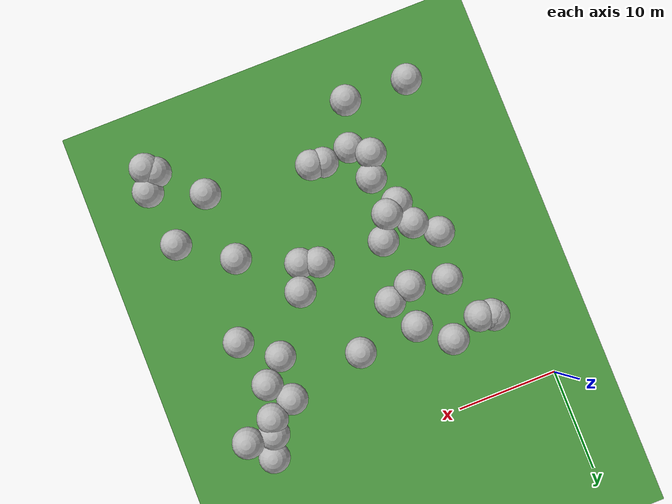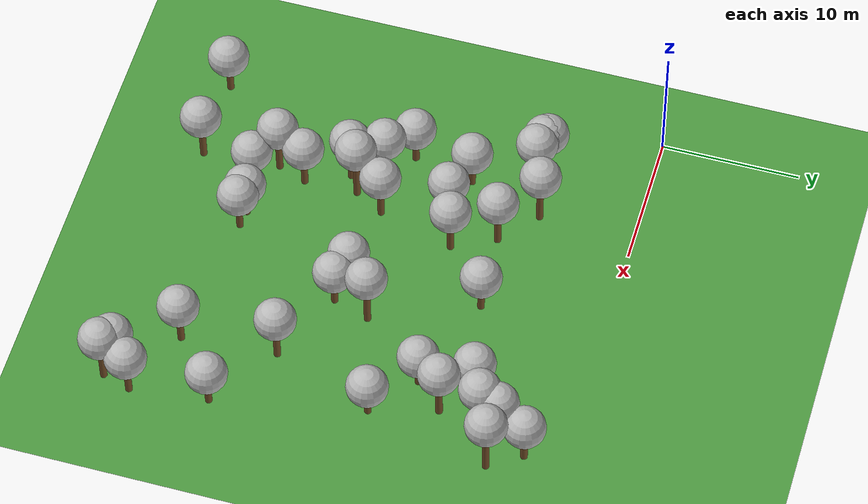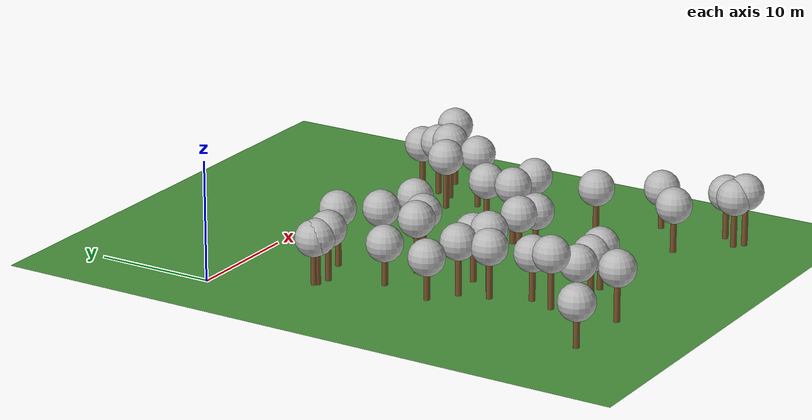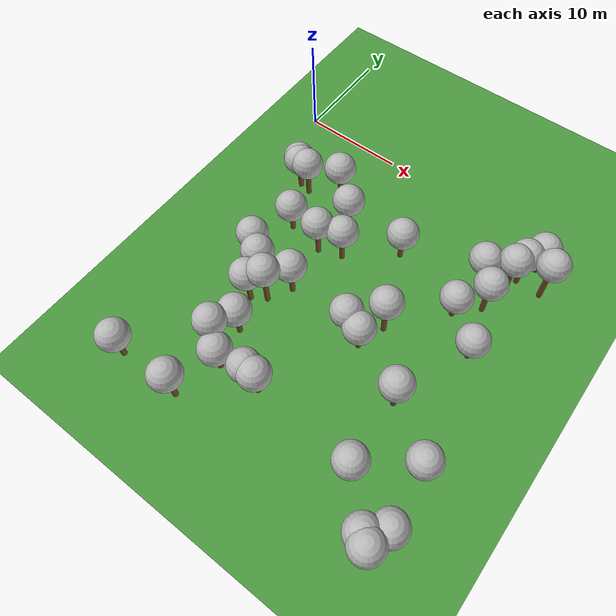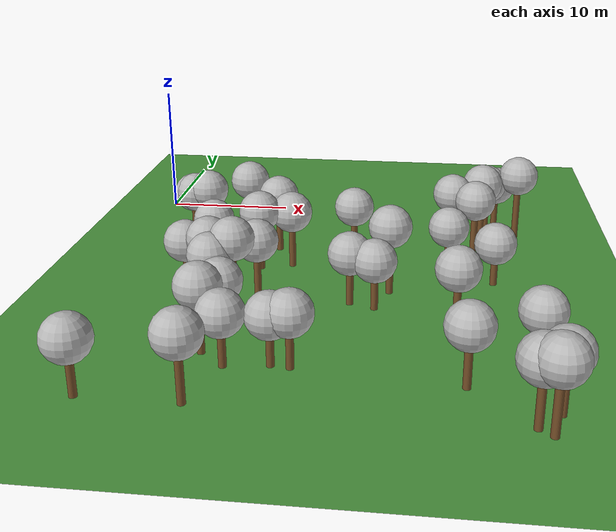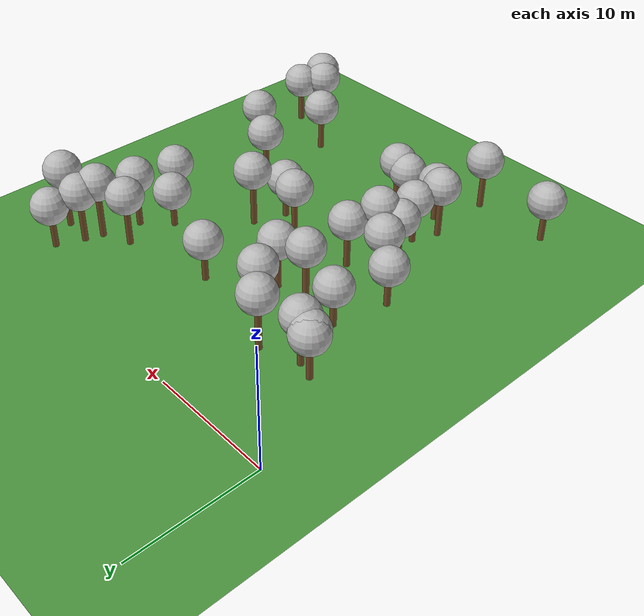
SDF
<sdf version="1.5">
 <world name="default">
  <model name="tree_simple496">
   <static>1</static>
   <link name="link">
    <pose>0 0 0.1 0 -0 0</pose>
    <collision name="collision_trunk">
     <pose>0 0 2 0 -0 0</pose>
     <geometry><cylinder><radius>0.25</radius><length>4</length></cylinder></geometry>
    </collision>
    <collision name="collision_treetop">
     <pose>0 0 5.2 0 -0 0</pose>
     <geometry><sphere><radius>1.5</radius></sphere></geometry>
    </collision>
    <visual name="trunk">
     <pose>0 0 2 0 -0 0</pose>
     <geometry><cylinder><radius>0.25</radius><length>4</length></cylinder></geometry>
     <material>
      <script>
       <uri>model://tree_simple/scripts</uri>
       <uri>model://tree_simple/materials/textures</uri>
       <name>TreeSimple/Trunk</name>
      </script>
     </material>
    </visual>
    <visual name="treetop">
     <pose>0 0 5.2 0 -0 0</pose>
     <geometry><sphere><radius>1.5</radius></sphere></geometry>
     <material>
      <script>
       <uri>model://tree_simple/scripts</uri>
       <uri>model://tree_simple/materials/textures</uri>
       <name>TreeSimple/Treetop</name>
      </script>
     </material>
    </visual>
   </link>
   <pose>13.6194298432 -26.9856291803 -1.9925861293488478 0 -0 0</pose>
  </model>
  <model name="tree_simple478">
   <static>1</static>
   <link name="link">
    <pose>0 0 0.1 0 -0 0</pose>
    <collision name="collision_trunk">
     <pose>0 0 2 0 -0 0</pose>
     <geometry><cylinder><radius>0.25</radius><length>4</length></cylinder></geometry>
    </collision>
    <collision name="collision_treetop">
     <pose>0 0 5.2 0 -0 0</pose>
     <geometry><sphere><radius>1.5</radius></sphere></geometry>
    </collision>
    <visual name="trunk">
     <pose>0 0 2 0 -0 0</pose>
     <geometry><cylinder><radius>0.25</radius><length>4</length></cylinder></geometry>
     <material>
      <script>
       <uri>model://tree_simple/scripts</uri>
       <uri>model://tree_simple/materials/textures</uri>
       <name>TreeSimple/Trunk</name>
      </script>
     </material>
    </visual>
    <visual name="treetop">
     <pose>0 0 5.2 0 -0 0</pose>
     <geometry><sphere><radius>1.5</radius></sphere></geometry>
     <material>
      <script>
       <uri>model://tree_simple/scripts</uri>
       <uri>model://tree_simple/materials/textures</uri>
       <name>TreeSimple/Treetop</name>
      </script>
     </material>
    </visual>
   </link>
   <pose>6.74093075138 -12.3162984353 -1.8605144772350228 0 -0 0</pose>
  </model>
  <model name="tree_simple472">
   <static>1</static>
   <link name="link">
    <pose>0 0 0.1 0 -0 0</pose>
    <collision name="collision_trunk">
     <pose>0 0 2 0 -0 0</pose>
     <geometry><cylinder><radius>0.25</radius><length>4</length></cylinder></geometry>
    </collision>
    <collision name="collision_treetop">
     <pose>0 0 5.2 0 -0 0</pose>
     <geometry><sphere><radius>1.5</radius></sphere></geometry>
    </collision>
    <visual name="trunk">
     <pose>0 0 2 0 -0 0</pose>
     <geometry><cylinder><radius>0.25</radius><length>4</length></cylinder></geometry>
     <material>
      <script>
       <uri>model://tree_simple/scripts</uri>
       <uri>model://tree_simple/materials/textures</uri>
       <name>TreeSimple/Trunk</name>
      </script>
     </material>
    </visual>
    <visual name="treetop">
     <pose>0 0 5.2 0 -0 0</pose>
     <geometry><sphere><radius>1.5</radius></sphere></geometry>
     <material>
      <script>
       <uri>model://tree_simple/scripts</uri>
       <uri>model://tree_simple/materials/textures</uri>
       <name>TreeSimple/Treetop</name>
      </script>
     </material>
    </visual>
   </link>
   <pose>9.92228677952 -23.8303447852 -1.431262749278447 0 -0 0</pose>
  </model>
  <model name="tree_simple469">
   <static>1</static>
   <link name="link">
    <pose>0 0 0.1 0 -0 0</pose>
    <collision name="collision_trunk">
     <pose>0 0 2 0 -0 0</pose>
     <geometry><cylinder><radius>0.25</radius><length>4</length></cylinder></geometry>
    </collision>
    <collision name="collision_treetop">
     <pose>0 0 5.2 0 -0 0</pose>
     <geometry><sphere><radius>1.5</radius></sphere></geometry>
    </collision>
    <visual name="trunk">
     <pose>0 0 2 0 -0 0</pose>
     <geometry><cylinder><radius>0.25</radius><length>4</length></cylinder></geometry>
     <material>
      <script>
       <uri>model://tree_simple/scripts</uri>
       <uri>model://tree_simple/materials/textures</uri>
       <name>TreeSimple/Trunk</name>
      </script>
     </material>
    </visual>
    <visual name="treetop">
     <pose>0 0 5.2 0 -0 0</pose>
     <geometry><sphere><radius>1.5</radius></sphere></geometry>
     <material>
      <script>
       <uri>model://tree_simple/scripts</uri>
       <uri>model://tree_simple/materials/textures</uri>
       <name>TreeSimple/Treetop</name>
      </script>
     </material>
    </visual>
   </link>
   <pose>28.6908934165 -31.7515844244 -1.147731988438275 0 -0 0</pose>
  </model>
  <model name="tree_simple463">
   <static>1</static>
   <link name="link">
    <pose>0 0 0.1 0 -0 0</pose>
    <collision name="collision_trunk">
     <pose>0 0 2 0 -0 0</pose>
     <geometry><cylinder><radius>0.25</radius><length>4</length></cylinder></geometry>
    </collision>
    <collision name="collision_treetop">
     <pose>0 0 5.2 0 -0 0</pose>
     <geometry><sphere><radius>1.5</radius></sphere></geometry>
    </collision>
    <visual name="trunk">
     <pose>0 0 2 0 -0 0</pose>
     <geometry><cylinder><radius>0.25</radius><length>4</length></cylinder></geometry>
     <material>
      <script>
       <uri>model://tree_simple/scripts</uri>
       <uri>model://tree_simple/materials/textures</uri>
       <name>TreeSimple/Trunk</name>
      </script>
     </material>
    </visual>
    <visual name="treetop">
     <pose>0 0 5.2 0 -0 0</pose>
     <geometry><sphere><radius>1.5</radius></sphere></geometry>
     <material>
      <script>
       <uri>model://tree_simple/scripts</uri>
       <uri>model://tree_simple/materials/textures</uri>
       <name>TreeSimple/Treetop</name>
      </script>
     </material>
    </visual>
   </link>
   <pose>4.14452898467 -7.71733475474 -1.383862086193779 0 -0 0</pose>
  </model>
  <model name="tree_simple451">
   <static>1</static>
   <link name="link">
    <pose>0 0 0.1 0 -0 0</pose>
    <collision name="collision_trunk">
     <pose>0 0 2 0 -0 0</pose>
     <geometry><cylinder><radius>0.25</radius><length>4</length></cylinder></geometry>
    </collision>
    <collision name="collision_treetop">
     <pose>0 0 5.2 0 -0 0</pose>
     <geometry><sphere><radius>1.5</radius></sphere></geometry>
    </collision>
    <visual name="trunk">
     <pose>0 0 2 0 -0 0</pose>
     <geometry><cylinder><radius>0.25</radius><length>4</length></cylinder></geometry>
     <material>
      <script>
       <uri>model://tree_simple/scripts</uri>
       <uri>model://tree_simple/materials/textures</uri>
       <name>TreeSimple/Trunk</name>
      </script>
     </material>
    </visual>
    <visual name="treetop">
     <pose>0 0 5.2 0 -0 0</pose>
     <geometry><sphere><radius>1.5</radius></sphere></geometry>
     <material>
      <script>
       <uri>model://tree_simple/scripts</uri>
       <uri>model://tree_simple/materials/textures</uri>
       <name>TreeSimple/Treetop</name>
      </script>
     </material>
    </visual>
   </link>
   <pose>25.0880879186 -28.1508348671 -1.3702262404169263 0 -0 0</pose>
  </model>
  <model name="tree_simple439">
   <static>1</static>
   <link name="link">
    <pose>0 0 0.1 0 -0 0</pose>
    <collision name="collision_trunk">
     <pose>0 0 2 0 -0 0</pose>
     <geometry><cylinder><radius>0.25</radius><length>4</length></cylinder></geometry>
    </collision>
    <collision name="collision_treetop">
     <pose>0 0 5.2 0 -0 0</pose>
     <geometry><sphere><radius>1.5</radius></sphere></geometry>
    </collision>
    <visual name="trunk">
     <pose>0 0 2 0 -0 0</pose>
     <geometry><cylinder><radius>0.25</radius><length>4</length></cylinder></geometry>
     <material>
      <script>
       <uri>model://tree_simple/scripts</uri>
       <uri>model://tree_simple/materials/textures</uri>
       <name>TreeSimple/Trunk</name>
      </script>
     </material>
    </visual>
    <visual name="treetop">
     <pose>0 0 5.2 0 -0 0</pose>
     <geometry><sphere><radius>1.5</radius></sphere></geometry>
     <material>
      <script>
       <uri>model://tree_simple/scripts</uri>
       <uri>model://tree_simple/materials/textures</uri>
       <name>TreeSimple/Treetop</name>
      </script>
     </material>
    </visual>
   </link>
   <pose>8.56501316053 -20.7640585998 -1.0570590841891165 0 -0 0</pose>
  </model>
  <model name="tree_simple432">
   <static>1</static>
   <link name="link">
    <pose>0 0 0.1 0 -0 0</pose>
    <collision name="collision_trunk">
     <pose>0 0 2 0 -0 0</pose>
     <geometry><cylinder><radius>0.25</radius><length>4</length></cylinder></geometry>
    </collision>
    <collision name="collision_treetop">
     <pose>0 0 5.2 0 -0 0</pose>
     <geometry><sphere><radius>1.5</radius></sphere></geometry>
    </collision>
    <visual name="trunk">
     <pose>0 0 2 0 -0 0</pose>
     <geometry><cylinder><radius>0.25</radius><length>4</length></cylinder></geometry>
     <material>
      <script>
       <uri>model://tree_simple/scripts</uri>
       <uri>model://tree_simple/materials/textures</uri>
       <name>TreeSimple/Trunk</name>
      </script>
     </material>
    </visual>
    <visual name="treetop">
     <pose>0 0 5.2 0 -0 0</pose>
     <geometry><sphere><radius>1.5</radius></sphere></geometry>
     <material>
      <script>
       <uri>model://tree_simple/scripts</uri>
       <uri>model://tree_simple/materials/textures</uri>
       <name>TreeSimple/Treetop</name>
      </script>
     </material>
    </visual>
   </link>
   <pose>8.39657738542 -6.88848549894 -0.5176619723116522 0 -0 0</pose>
  </model>
  <model name="tree_simple429">
   <static>1</static>
   <link name="link">
    <pose>0 0 0.1 0 -0 0</pose>
    <collision name="collision_trunk">
     <pose>0 0 2 0 -0 0</pose>
     <geometry><cylinder><radius>0.25</radius><length>4</length></cylinder></geometry>
    </collision>
    <collision name="collision_treetop">
     <pose>0 0 5.2 0 -0 0</pose>
     <geometry><sphere><radius>1.5</radius></sphere></geometry>
    </collision>
    <visual name="trunk">
     <pose>0 0 2 0 -0 0</pose>
     <geometry><cylinder><radius>0.25</radius><length>4</length></cylinder></geometry>
     <material>
      <script>
       <uri>model://tree_simple/scripts</uri>
       <uri>model://tree_simple/materials/textures</uri>
       <name>TreeSimple/Trunk</name>
      </script>
     </material>
    </visual>
    <visual name="treetop">
     <pose>0 0 5.2 0 -0 0</pose>
     <geometry><sphere><radius>1.5</radius></sphere></geometry>
     <material>
      <script>
       <uri>model://tree_simple/scripts</uri>
       <uri>model://tree_simple/materials/textures</uri>
       <name>TreeSimple/Treetop</name>
      </script>
     </material>
    </visual>
   </link>
   <pose>29.4727075469 -24.7358283571 -1.8949977459189733 0 -0 0</pose>
  </model>
  <model name="tree_simple428">
   <static>1</static>
   <link name="link">
    <pose>0 0 0.1 0 -0 0</pose>
    <collision name="collision_trunk">
     <pose>0 0 2 0 -0 0</pose>
     <geometry><cylinder><radius>0.25</radius><length>4</length></cylinder></geometry>
    </collision>
    <collision name="collision_treetop">
     <pose>0 0 5.2 0 -0 0</pose>
     <geometry><sphere><radius>1.5</radius></sphere></geometry>
    </collision>
    <visual name="trunk">
     <pose>0 0 2 0 -0 0</pose>
     <geometry><cylinder><radius>0.25</radius><length>4</length></cylinder></geometry>
     <material>
      <script>
       <uri>model://tree_simple/scripts</uri>
       <uri>model://tree_simple/materials/textures</uri>
       <name>TreeSimple/Trunk</name>
      </script>
     </material>
    </visual>
    <visual name="treetop">
     <pose>0 0 5.2 0 -0 0</pose>
     <geometry><sphere><radius>1.5</radius></sphere></geometry>
     <material>
      <script>
       <uri>model://tree_simple/scripts</uri>
       <uri>model://tree_simple/materials/textures</uri>
       <name>TreeSimple/Treetop</name>
      </script>
     </material>
    </visual>
   </link>
   <pose>9.87663766252 -19.9509422297 -0.22740933367404081 0 -0 0</pose>
  </model>
  <model name="tree_simple394">
   <static>1</static>
   <link name="link">
    <pose>0 0 0.1 0 -0 0</pose>
    <collision name="collision_trunk">
     <pose>0 0 2 0 -0 0</pose>
     <geometry><cylinder><radius>0.25</radius><length>4</length></cylinder></geometry>
    </collision>
    <collision name="collision_treetop">
     <pose>0 0 5.2 0 -0 0</pose>
     <geometry><sphere><radius>1.5</radius></sphere></geometry>
    </collision>
    <visual name="trunk">
     <pose>0 0 2 0 -0 0</pose>
     <geometry><cylinder><radius>0.25</radius><length>4</length></cylinder></geometry>
     <material>
      <script>
       <uri>model://tree_simple/scripts</uri>
       <uri>model://tree_simple/materials/textures</uri>
       <name>TreeSimple/Trunk</name>
      </script>
     </material>
    </visual>
    <visual name="treetop">
     <pose>0 0 5.2 0 -0 0</pose>
     <geometry><sphere><radius>1.5</radius></sphere></geometry>
     <material>
      <script>
       <uri>model://tree_simple/scripts</uri>
       <uri>model://tree_simple/materials/textures</uri>
       <name>TreeSimple/Treetop</name>
      </script>
     </material>
    </visual>
   </link>
   <pose>26.6658652991 -6.19294115589 -0.3745748475699274 0 -0 0</pose>
  </model>
  <model name="tree_simple389">
   <static>1</static>
   <link name="link">
    <pose>0 0 0.1 0 -0 0</pose>
    <collision name="collision_trunk">
     <pose>0 0 2 0 -0 0</pose>
     <geometry><cylinder><radius>0.25</radius><length>4</length></cylinder></geometry>
    </collision>
    <collision name="collision_treetop">
     <pose>0 0 5.2 0 -0 0</pose>
     <geometry><sphere><radius>1.5</radius></sphere></geometry>
    </collision>
    <visual name="trunk">
     <pose>0 0 2 0 -0 0</pose>
     <geometry><cylinder><radius>0.25</radius><length>4</length></cylinder></geometry>
     <material>
      <script>
       <uri>model://tree_simple/scripts</uri>
       <uri>model://tree_simple/materials/textures</uri>
       <name>TreeSimple/Trunk</name>
      </script>
     </material>
    </visual>
    <visual name="treetop">
     <pose>0 0 5.2 0 -0 0</pose>
     <geometry><sphere><radius>1.5</radius></sphere></geometry>
     <material>
      <script>
       <uri>model://tree_simple/scripts</uri>
       <uri>model://tree_simple/materials/textures</uri>
       <name>TreeSimple/Treetop</name>
      </script>
     </material>
    </visual>
   </link>
   <pose>12.5934036343 -12.2598342596 -1.0758427439989324 0 -0 0</pose>
  </model>
  <model name="tree_simple377">
   <static>1</static>
   <link name="link">
    <pose>0 0 0.1 0 -0 0</pose>
    <collision name="collision_trunk">
     <pose>0 0 2 0 -0 0</pose>
     <geometry><cylinder><radius>0.25</radius><length>4</length></cylinder></geometry>
    </collision>
    <collision name="collision_treetop">
     <pose>0 0 5.2 0 -0 0</pose>
     <geometry><sphere><radius>1.5</radius></sphere></geometry>
    </collision>
    <visual name="trunk">
     <pose>0 0 2 0 -0 0</pose>
     <geometry><cylinder><radius>0.25</radius><length>4</length></cylinder></geometry>
     <material>
      <script>
       <uri>model://tree_simple/scripts</uri>
       <uri>model://tree_simple/materials/textures</uri>
       <name>TreeSimple/Trunk</name>
      </script>
     </material>
    </visual>
    <visual name="treetop">
     <pose>0 0 5.2 0 -0 0</pose>
     <geometry><sphere><radius>1.5</radius></sphere></geometry>
     <material>
      <script>
       <uri>model://tree_simple/scripts</uri>
       <uri>model://tree_simple/materials/textures</uri>
       <name>TreeSimple/Treetop</name>
      </script>
     </material>
    </visual>
   </link>
   <pose>10.8205708978 -27.3699142702 -1.8265645475693046 0 -0 0</pose>
  </model>
  <model name="tree_simple327">
   <static>1</static>
   <link name="link">
    <pose>0 0 0.1 0 -0 0</pose>
    <collision name="collision_trunk">
     <pose>0 0 2 0 -0 0</pose>
     <geometry><cylinder><radius>0.25</radius><length>4</length></cylinder></geometry>
    </collision>
    <collision name="collision_treetop">
     <pose>0 0 5.2 0 -0 0</pose>
     <geometry><sphere><radius>1.5</radius></sphere></geometry>
    </collision>
    <visual name="trunk">
     <pose>0 0 2 0 -0 0</pose>
     <geometry><cylinder><radius>0.25</radius><length>4</length></cylinder></geometry>
     <material>
      <script>
       <uri>model://tree_simple/scripts</uri>
       <uri>model://tree_simple/materials/textures</uri>
       <name>TreeSimple/Trunk</name>
      </script>
     </material>
    </visual>
    <visual name="treetop">
     <pose>0 0 5.2 0 -0 0</pose>
     <geometry><sphere><radius>1.5</radius></sphere></geometry>
     <material>
      <script>
       <uri>model://tree_simple/scripts</uri>
       <uri>model://tree_simple/materials/textures</uri>
       <name>TreeSimple/Treetop</name>
      </script>
     </material>
    </visual>
   </link>
   <pose>5.78438571624 -16.7663148306 -1.8401551642668934 0 -0 0</pose>
  </model>
  <model name="tree_simple309">
   <static>1</static>
   <link name="link">
    <pose>0 0 0.1 0 -0 0</pose>
    <collision name="collision_trunk">
     <pose>0 0 2 0 -0 0</pose>
     <geometry><cylinder><radius>0.25</radius><length>4</length></cylinder></geometry>
    </collision>
    <collision name="collision_treetop">
     <pose>0 0 5.2 0 -0 0</pose>
     <geometry><sphere><radius>1.5</radius></sphere></geometry>
    </collision>
    <visual name="trunk">
     <pose>0 0 2 0 -0 0</pose>
     <geometry><cylinder><radius>0.25</radius><length>4</length></cylinder></geometry>
     <material>
      <script>
       <uri>model://tree_simple/scripts</uri>
       <uri>model://tree_simple/materials/textures</uri>
       <name>TreeSimple/Trunk</name>
      </script>
     </material>
    </visual>
    <visual name="treetop">
     <pose>0 0 5.2 0 -0 0</pose>
     <geometry><sphere><radius>1.5</radius></sphere></geometry>
     <material>
      <script>
       <uri>model://tree_simple/scripts</uri>
       <uri>model://tree_simple/materials/textures</uri>
       <name>TreeSimple/Treetop</name>
      </script>
     </material>
    </visual>
   </link>
   <pose>19.1748935323 -18.8000539767 -1.8319169257595287 0 -0 0</pose>
  </model>
  <model name="tree_simple301">
   <static>1</static>
   <link name="link">
    <pose>0 0 0.1 0 -0 0</pose>
    <collision name="collision_trunk">
     <pose>0 0 2 0 -0 0</pose>
     <geometry><cylinder><radius>0.25</radius><length>4</length></cylinder></geometry>
    </collision>
    <collision name="collision_treetop">
     <pose>0 0 5.2 0 -0 0</pose>
     <geometry><sphere><radius>1.5</radius></sphere></geometry>
    </collision>
    <visual name="trunk">
     <pose>0 0 2 0 -0 0</pose>
     <geometry><cylinder><radius>0.25</radius><length>4</length></cylinder></geometry>
     <material>
      <script>
       <uri>model://tree_simple/scripts</uri>
       <uri>model://tree_simple/materials/textures</uri>
       <name>TreeSimple/Trunk</name>
      </script>
     </material>
    </visual>
    <visual name="treetop">
     <pose>0 0 5.2 0 -0 0</pose>
     <geometry><sphere><radius>1.5</radius></sphere></geometry>
     <material>
      <script>
       <uri>model://tree_simple/scripts</uri>
       <uri>model://tree_simple/materials/textures</uri>
       <name>TreeSimple/Treetop</name>
      </script>
     </material>
    </visual>
   </link>
   <pose>27.965012063 -2.69695305694 -1.6274499495880708 0 -0 0</pose>
  </model>
  <model name="tree_simple292">
   <static>1</static>
   <link name="link">
    <pose>0 0 0.1 0 -0 0</pose>
    <collision name="collision_trunk">
     <pose>0 0 2 0 -0 0</pose>
     <geometry><cylinder><radius>0.25</radius><length>4</length></cylinder></geometry>
    </collision>
    <collision name="collision_treetop">
     <pose>0 0 5.2 0 -0 0</pose>
     <geometry><sphere><radius>1.5</radius></sphere></geometry>
    </collision>
    <visual name="trunk">
     <pose>0 0 2 0 -0 0</pose>
     <geometry><cylinder><radius>0.25</radius><length>4</length></cylinder></geometry>
     <material>
      <script>
       <uri>model://tree_simple/scripts</uri>
       <uri>model://tree_simple/materials/textures</uri>
       <name>TreeSimple/Trunk</name>
      </script>
     </material>
    </visual>
    <visual name="treetop">
     <pose>0 0 5.2 0 -0 0</pose>
     <geometry><sphere><radius>1.5</radius></sphere></geometry>
     <material>
      <script>
       <uri>model://tree_simple/scripts</uri>
       <uri>model://tree_simple/materials/textures</uri>
       <name>TreeSimple/Treetop</name>
      </script>
     </material>
    </visual>
   </link>
   <pose>16.8917664362 -8.8290409333 -1.730026077419935 0 -0 0</pose>
  </model>
  <model name="tree_simple290">
   <static>1</static>
   <link name="link">
    <pose>0 0 0.1 0 -0 0</pose>
    <collision name="collision_trunk">
     <pose>0 0 2 0 -0 0</pose>
     <geometry><cylinder><radius>0.25</radius><length>4</length></cylinder></geometry>
    </collision>
    <collision name="collision_treetop">
     <pose>0 0 5.2 0 -0 0</pose>
     <geometry><sphere><radius>1.5</radius></sphere></geometry>
    </collision>
    <visual name="trunk">
     <pose>0 0 2 0 -0 0</pose>
     <geometry><cylinder><radius>0.25</radius><length>4</length></cylinder></geometry>
     <material>
      <script>
       <uri>model://tree_simple/scripts</uri>
       <uri>model://tree_simple/materials/textures</uri>
       <name>TreeSimple/Trunk</name>
      </script>
     </material>
    </visual>
    <visual name="treetop">
     <pose>0 0 5.2 0 -0 0</pose>
     <geometry><sphere><radius>1.5</radius></sphere></geometry>
     <material>
      <script>
       <uri>model://tree_simple/scripts</uri>
       <uri>model://tree_simple/materials/textures</uri>
       <name>TreeSimple/Treetop</name>
      </script>
     </material>
    </visual>
   </link>
   <pose>27.3398552582 -13.9618363734 -2.207831483510861 0 -0 0</pose>
  </model>
  <model name="tree_simple288">
   <static>1</static>
   <link name="link">
    <pose>0 0 0.1 0 -0 0</pose>
    <collision name="collision_trunk">
     <pose>0 0 2 0 -0 0</pose>
     <geometry><cylinder><radius>0.25</radius><length>4</length></cylinder></geometry>
    </collision>
    <collision name="collision_treetop">
     <pose>0 0 5.2 0 -0 0</pose>
     <geometry><sphere><radius>1.5</radius></sphere></geometry>
    </collision>
    <visual name="trunk">
     <pose>0 0 2 0 -0 0</pose>
     <geometry><cylinder><radius>0.25</radius><length>4</length></cylinder></geometry>
     <material>
      <script>
       <uri>model://tree_simple/scripts</uri>
       <uri>model://tree_simple/materials/textures</uri>
       <name>TreeSimple/Trunk</name>
      </script>
     </material>
    </visual>
    <visual name="treetop">
     <pose>0 0 5.2 0 -0 0</pose>
     <geometry><sphere><radius>1.5</radius></sphere></geometry>
     <material>
      <script>
       <uri>model://tree_simple/scripts</uri>
       <uri>model://tree_simple/materials/textures</uri>
       <name>TreeSimple/Treetop</name>
      </script>
     </material>
    </visual>
   </link>
   <pose>27.0972467775 -4.81040951666 -0.8354458093800865 0 -0 0</pose>
  </model>
  <model name="tree_simple267">
   <static>1</static>
   <link name="link">
    <pose>0 0 0.1 0 -0 0</pose>
    <collision name="collision_trunk">
     <pose>0 0 2 0 -0 0</pose>
     <geometry><cylinder><radius>0.25</radius><length>4</length></cylinder></geometry>
    </collision>
    <collision name="collision_treetop">
     <pose>0 0 5.2 0 -0 0</pose>
     <geometry><sphere><radius>1.5</radius></sphere></geometry>
    </collision>
    <visual name="trunk">
     <pose>0 0 2 0 -0 0</pose>
     <geometry><cylinder><radius>0.25</radius><length>4</length></cylinder></geometry>
     <material>
      <script>
       <uri>model://tree_simple/scripts</uri>
       <uri>model://tree_simple/materials/textures</uri>
       <name>TreeSimple/Trunk</name>
      </script>
     </material>
    </visual>
    <visual name="treetop">
     <pose>0 0 5.2 0 -0 0</pose>
     <geometry><sphere><radius>1.5</radius></sphere></geometry>
     <material>
      <script>
       <uri>model://tree_simple/scripts</uri>
       <uri>model://tree_simple/materials/textures</uri>
       <name>TreeSimple/Treetop</name>
      </script>
     </material>
    </visual>
   </link>
   <pose>26.0311147771 -9.256788114 -0.7330419781641019 0 -0 0</pose>
  </model>
  <model name="tree_simple255">
   <static>1</static>
   <link name="link">
    <pose>0 0 0.1 0 -0 0</pose>
    <collision name="collision_trunk">
     <pose>0 0 2 0 -0 0</pose>
     <geometry><cylinder><radius>0.25</radius><length>4</length></cylinder></geometry>
    </collision>
    <collision name="collision_treetop">
     <pose>0 0 5.2 0 -0 0</pose>
     <geometry><sphere><radius>1.5</radius></sphere></geometry>
    </collision>
    <visual name="trunk">
     <pose>0 0 2 0 -0 0</pose>
     <geometry><cylinder><radius>0.25</radius><length>4</length></cylinder></geometry>
     <material>
      <script>
       <uri>model://tree_simple/scripts</uri>
       <uri>model://tree_simple/materials/textures</uri>
       <name>TreeSimple/Trunk</name>
      </script>
     </material>
    </visual>
    <visual name="treetop">
     <pose>0 0 5.2 0 -0 0</pose>
     <geometry><sphere><radius>1.5</radius></sphere></geometry>
     <material>
      <script>
       <uri>model://tree_simple/scripts</uri>
       <uri>model://tree_simple/materials/textures</uri>
       <name>TreeSimple/Treetop</name>
      </script>
     </material>
    </visual>
   </link>
   <pose>30.0970419452 -30.3026780561 -1.4565133436554591 0 -0 0</pose>
  </model>
  <model name="tree_simple249">
   <static>1</static>
   <link name="link">
    <pose>0 0 0.1 0 -0 0</pose>
    <collision name="collision_trunk">
     <pose>0 0 2 0 -0 0</pose>
     <geometry><cylinder><radius>0.25</radius><length>4</length></cylinder></geometry>
    </collision>
    <collision name="collision_treetop">
     <pose>0 0 5.2 0 -0 0</pose>
     <geometry><sphere><radius>1.5</radius></sphere></geometry>
    </collision>
    <visual name="trunk">
     <pose>0 0 2 0 -0 0</pose>
     <geometry><cylinder><radius>0.25</radius><length>4</length></cylinder></geometry>
     <material>
      <script>
       <uri>model://tree_simple/scripts</uri>
       <uri>model://tree_simple/materials/textures</uri>
       <name>TreeSimple/Trunk</name>
      </script>
     </material>
    </visual>
    <visual name="treetop">
     <pose>0 0 5.2 0 -0 0</pose>
     <geometry><sphere><radius>1.5</radius></sphere></geometry>
     <material>
      <script>
       <uri>model://tree_simple/scripts</uri>
       <uri>model://tree_simple/materials/textures</uri>
       <name>TreeSimple/Treetop</name>
      </script>
     </material>
    </visual>
   </link>
   <pose>9.52111231685 -31.538100668 -0.9713763501700882 0 -0 0</pose>
  </model>
  <model name="tree_simple222">
   <static>1</static>
   <link name="link">
    <pose>0 0 0.1 0 -0 0</pose>
    <collision name="collision_trunk">
     <pose>0 0 2 0 -0 0</pose>
     <geometry><cylinder><radius>0.25</radius><length>4</length></cylinder></geometry>
    </collision>
    <collision name="collision_treetop">
     <pose>0 0 5.2 0 -0 0</pose>
     <geometry><sphere><radius>1.5</radius></sphere></geometry>
    </collision>
    <visual name="trunk">
     <pose>0 0 2 0 -0 0</pose>
     <geometry><cylinder><radius>0.25</radius><length>4</length></cylinder></geometry>
     <material>
      <script>
       <uri>model://tree_simple/scripts</uri>
       <uri>model://tree_simple/materials/textures</uri>
       <name>TreeSimple/Trunk</name>
      </script>
     </material>
    </visual>
    <visual name="treetop">
     <pose>0 0 5.2 0 -0 0</pose>
     <geometry><sphere><radius>1.5</radius></sphere></geometry>
     <material>
      <script>
       <uri>model://tree_simple/scripts</uri>
       <uri>model://tree_simple/materials/textures</uri>
       <name>TreeSimple/Treetop</name>
      </script>
     </material>
    </visual>
   </link>
   <pose>3.92504774623 -7.51224141252 -1.4855255527148343 0 -0 0</pose>
  </model>
  <model name="tree_simple211">
   <static>1</static>
   <link name="link">
    <pose>0 0 0.1 0 -0 0</pose>
    <collision name="collision_trunk">
     <pose>0 0 2 0 -0 0</pose>
     <geometry><cylinder><radius>0.25</radius><length>4</length></cylinder></geometry>
    </collision>
    <collision name="collision_treetop">
     <pose>0 0 5.2 0 -0 0</pose>
     <geometry><sphere><radius>1.5</radius></sphere></geometry>
    </collision>
    <visual name="trunk">
     <pose>0 0 2 0 -0 0</pose>
     <geometry><cylinder><radius>0.25</radius><length>4</length></cylinder></geometry>
     <material>
      <script>
       <uri>model://tree_simple/scripts</uri>
       <uri>model://tree_simple/materials/textures</uri>
       <name>TreeSimple/Trunk</name>
      </script>
     </material>
    </visual>
    <visual name="treetop">
     <pose>0 0 5.2 0 -0 0</pose>
     <geometry><sphere><radius>1.5</radius></sphere></geometry>
     <material>
      <script>
       <uri>model://tree_simple/scripts</uri>
       <uri>model://tree_simple/materials/textures</uri>
       <name>TreeSimple/Treetop</name>
      </script>
     </material>
    </visual>
   </link>
   <pose>24.1088627432 -11.2741546154 -2.14893136424271 0 -0 0</pose>
  </model>
  <model name="tree_simple191">
   <static>1</static>
   <link name="link">
    <pose>0 0 0.1 0 -0 0</pose>
    <collision name="collision_trunk">
     <pose>0 0 2 0 -0 0</pose>
     <geometry><cylinder><radius>0.25</radius><length>4</length></cylinder></geometry>
    </collision>
    <collision name="collision_treetop">
     <pose>0 0 5.2 0 -0 0</pose>
     <geometry><sphere><radius>1.5</radius></sphere></geometry>
    </collision>
    <visual name="trunk">
     <pose>0 0 2 0 -0 0</pose>
     <geometry><cylinder><radius>0.25</radius><length>4</length></cylinder></geometry>
     <material>
      <script>
       <uri>model://tree_simple/scripts</uri>
       <uri>model://tree_simple/materials/textures</uri>
       <name>TreeSimple/Trunk</name>
      </script>
     </material>
    </visual>
    <visual name="treetop">
     <pose>0 0 5.2 0 -0 0</pose>
     <geometry><sphere><radius>1.5</radius></sphere></geometry>
     <material>
      <script>
       <uri>model://tree_simple/scripts</uri>
       <uri>model://tree_simple/materials/textures</uri>
       <name>TreeSimple/Treetop</name>
      </script>
     </material>
    </visual>
   </link>
   <pose>7.88783183775 -18.3803184039 -0.8883682284309662 0 -0 0</pose>
  </model>
  <model name="tree_simple178">
   <static>1</static>
   <link name="link">
    <pose>0 0 0.1 0 -0 0</pose>
    <collision name="collision_trunk">
     <pose>0 0 2 0 -0 0</pose>
     <geometry><cylinder><radius>0.25</radius><length>4</length></cylinder></geometry>
    </collision>
    <collision name="collision_treetop">
     <pose>0 0 5.2 0 -0 0</pose>
     <geometry><sphere><radius>1.5</radius></sphere></geometry>
    </collision>
    <visual name="trunk">
     <pose>0 0 2 0 -0 0</pose>
     <geometry><cylinder><radius>0.25</radius><length>4</length></cylinder></geometry>
     <material>
      <script>
       <uri>model://tree_simple/scripts</uri>
       <uri>model://tree_simple/materials/textures</uri>
       <name>TreeSimple/Trunk</name>
      </script>
     </material>
    </visual>
    <visual name="treetop">
     <pose>0 0 5.2 0 -0 0</pose>
     <geometry><sphere><radius>1.5</radius></sphere></geometry>
     <material>
      <script>
       <uri>model://tree_simple/scripts</uri>
       <uri>model://tree_simple/materials/textures</uri>
       <name>TreeSimple/Treetop</name>
      </script>
     </material>
    </visual>
   </link>
   <pose>24.3791750449 -7.18218424398 -0.9171380024931213 0 -0 0</pose>
  </model>
  <model name="tree_simple168">
   <static>1</static>
   <link name="link">
    <pose>0 0 0.1 0 -0 0</pose>
    <collision name="collision_trunk">
     <pose>0 0 2 0 -0 0</pose>
     <geometry><cylinder><radius>0.25</radius><length>4</length></cylinder></geometry>
    </collision>
    <collision name="collision_treetop">
     <pose>0 0 5.2 0 -0 0</pose>
     <geometry><sphere><radius>1.5</radius></sphere></geometry>
    </collision>
    <visual name="trunk">
     <pose>0 0 2 0 -0 0</pose>
     <geometry><cylinder><radius>0.25</radius><length>4</length></cylinder></geometry>
     <material>
      <script>
       <uri>model://tree_simple/scripts</uri>
       <uri>model://tree_simple/materials/textures</uri>
       <name>TreeSimple/Trunk</name>
      </script>
     </material>
    </visual>
    <visual name="treetop">
     <pose>0 0 5.2 0 -0 0</pose>
     <geometry><sphere><radius>1.5</radius></sphere></geometry>
     <material>
      <script>
       <uri>model://tree_simple/scripts</uri>
       <uri>model://tree_simple/materials/textures</uri>
       <name>TreeSimple/Treetop</name>
      </script>
     </material>
    </visual>
   </link>
   <pose>14.8234440125 -27.1346741382 -1.69828141853809 0 -0 0</pose>
  </model>
  <model name="tree_simple157">
   <static>1</static>
   <link name="link">
    <pose>0 0 0.1 0 -0 0</pose>
    <collision name="collision_trunk">
     <pose>0 0 2 0 -0 0</pose>
     <geometry><cylinder><radius>0.25</radius><length>4</length></cylinder></geometry>
    </collision>
    <collision name="collision_treetop">
     <pose>0 0 5.2 0 -0 0</pose>
     <geometry><sphere><radius>1.5</radius></sphere></geometry>
    </collision>
    <visual name="trunk">
     <pose>0 0 2 0 -0 0</pose>
     <geometry><cylinder><radius>0.25</radius><length>4</length></cylinder></geometry>
     <material>
      <script>
       <uri>model://tree_simple/scripts</uri>
       <uri>model://tree_simple/materials/textures</uri>
       <name>TreeSimple/Trunk</name>
      </script>
     </material>
    </visual>
    <visual name="treetop">
     <pose>0 0 5.2 0 -0 0</pose>
     <geometry><sphere><radius>1.5</radius></sphere></geometry>
     <material>
      <script>
       <uri>model://tree_simple/scripts</uri>
       <uri>model://tree_simple/materials/textures</uri>
       <name>TreeSimple/Treetop</name>
      </script>
     </material>
    </visual>
   </link>
   <pose>17.4643259264 -18.2232751505 -1.6385758582774286 0 -0 0</pose>
  </model>
  <model name="tree_simple156">
   <static>1</static>
   <link name="link">
    <pose>0 0 0.1 0 -0 0</pose>
    <collision name="collision_trunk">
     <pose>0 0 2 0 -0 0</pose>
     <geometry><cylinder><radius>0.25</radius><length>4</length></cylinder></geometry>
    </collision>
    <collision name="collision_treetop">
     <pose>0 0 5.2 0 -0 0</pose>
     <geometry><sphere><radius>1.5</radius></sphere></geometry>
    </collision>
    <visual name="trunk">
     <pose>0 0 2 0 -0 0</pose>
     <geometry><cylinder><radius>0.25</radius><length>4</length></cylinder></geometry>
     <material>
      <script>
       <uri>model://tree_simple/scripts</uri>
       <uri>model://tree_simple/materials/textures</uri>
       <name>TreeSimple/Trunk</name>
      </script>
     </material>
    </visual>
    <visual name="treetop">
     <pose>0 0 5.2 0 -0 0</pose>
     <geometry><sphere><radius>1.5</radius></sphere></geometry>
     <material>
      <script>
       <uri>model://tree_simple/scripts</uri>
       <uri>model://tree_simple/materials/textures</uri>
       <name>TreeSimple/Treetop</name>
      </script>
     </material>
    </visual>
   </link>
   <pose>20.0356149828 -16.1600287231 -0.3953744244513909 0 -0 0</pose>
  </model>
  <model name="tree_simple124">
   <static>1</static>
   <link name="link">
    <pose>0 0 0.1 0 -0 0</pose>
    <collision name="collision_trunk">
     <pose>0 0 2 0 -0 0</pose>
     <geometry><cylinder><radius>0.25</radius><length>4</length></cylinder></geometry>
    </collision>
    <collision name="collision_treetop">
     <pose>0 0 5.2 0 -0 0</pose>
     <geometry><sphere><radius>1.5</radius></sphere></geometry>
    </collision>
    <visual name="trunk">
     <pose>0 0 2 0 -0 0</pose>
     <geometry><cylinder><radius>0.25</radius><length>4</length></cylinder></geometry>
     <material>
      <script>
       <uri>model://tree_simple/scripts</uri>
       <uri>model://tree_simple/materials/textures</uri>
       <name>TreeSimple/Trunk</name>
      </script>
     </material>
    </visual>
    <visual name="treetop">
     <pose>0 0 5.2 0 -0 0</pose>
     <geometry><sphere><radius>1.5</radius></sphere></geometry>
     <material>
      <script>
       <uri>model://tree_simple/scripts</uri>
       <uri>model://tree_simple/materials/textures</uri>
       <name>TreeSimple/Treetop</name>
      </script>
     </material>
    </visual>
   </link>
   <pose>5.29940018808 -7.97080739541 -1.0370221698896145 0 -0 0</pose>
  </model>
  <model name="tree_simple120">
   <static>1</static>
   <link name="link">
    <pose>0 0 0.1 0 -0 0</pose>
    <collision name="collision_trunk">
     <pose>0 0 2 0 -0 0</pose>
     <geometry><cylinder><radius>0.25</radius><length>4</length></cylinder></geometry>
    </collision>
    <collision name="collision_treetop">
     <pose>0 0 5.2 0 -0 0</pose>
     <geometry><sphere><radius>1.5</radius></sphere></geometry>
    </collision>
    <visual name="trunk">
     <pose>0 0 2 0 -0 0</pose>
     <geometry><cylinder><radius>0.25</radius><length>4</length></cylinder></geometry>
     <material>
      <script>
       <uri>model://tree_simple/scripts</uri>
       <uri>model://tree_simple/materials/textures</uri>
       <name>TreeSimple/Trunk</name>
      </script>
     </material>
    </visual>
    <visual name="treetop">
     <pose>0 0 5.2 0 -0 0</pose>
     <geometry><sphere><radius>1.5</radius></sphere></geometry>
     <material>
      <script>
       <uri>model://tree_simple/scripts</uri>
       <uri>model://tree_simple/materials/textures</uri>
       <name>TreeSimple/Treetop</name>
      </script>
     </material>
    </visual>
   </link>
   <pose>29.4958477129 -4.98151152309 -0.020337009407658035 0 -0 0</pose>
  </model>
  <model name="tree_simple80">
   <static>1</static>
   <link name="link">
    <pose>0 0 0.1 0 -0 0</pose>
    <collision name="collision_trunk">
     <pose>0 0 2 0 -0 0</pose>
     <geometry><cylinder><radius>0.25</radius><length>4</length></cylinder></geometry>
    </collision>
    <collision name="collision_treetop">
     <pose>0 0 5.2 0 -0 0</pose>
     <geometry><sphere><radius>1.5</radius></sphere></geometry>
    </collision>
    <visual name="trunk">
     <pose>0 0 2 0 -0 0</pose>
     <geometry><cylinder><radius>0.25</radius><length>4</length></cylinder></geometry>
     <material>
      <script>
       <uri>model://tree_simple/scripts</uri>
       <uri>model://tree_simple/materials/textures</uri>
       <name>TreeSimple/Trunk</name>
      </script>
     </material>
    </visual>
    <visual name="treetop">
     <pose>0 0 5.2 0 -0 0</pose>
     <geometry><sphere><radius>1.5</radius></sphere></geometry>
     <material>
      <script>
       <uri>model://tree_simple/scripts</uri>
       <uri>model://tree_simple/materials/textures</uri>
       <name>TreeSimple/Treetop</name>
      </script>
     </material>
    </visual>
   </link>
   <pose>11.0693190469 -17.8172800913 -1.1670961933422719 0 -0 0</pose>
  </model>
  <model name="tree_simple61">
   <static>1</static>
   <link name="link">
    <pose>0 0 0.1 0 -0 0</pose>
    <collision name="collision_trunk">
     <pose>0 0 2 0 -0 0</pose>
     <geometry><cylinder><radius>0.25</radius><length>4</length></cylinder></geometry>
    </collision>
    <collision name="collision_treetop">
     <pose>0 0 5.2 0 -0 0</pose>
     <geometry><sphere><radius>1.5</radius></sphere></geometry>
    </collision>
    <visual name="trunk">
     <pose>0 0 2 0 -0 0</pose>
     <geometry><cylinder><radius>0.25</radius><length>4</length></cylinder></geometry>
     <material>
      <script>
       <uri>model://tree_simple/scripts</uri>
       <uri>model://tree_simple/materials/textures</uri>
       <name>TreeSimple/Trunk</name>
      </script>
     </material>
    </visual>
    <visual name="treetop">
     <pose>0 0 5.2 0 -0 0</pose>
     <geometry><sphere><radius>1.5</radius></sphere></geometry>
     <material>
      <script>
       <uri>model://tree_simple/scripts</uri>
       <uri>model://tree_simple/materials/textures</uri>
       <name>TreeSimple/Treetop</name>
      </script>
     </material>
    </visual>
   </link>
   <pose>11.1083893096 -9.22601092506 -0.8761207945441363 0 -0 0</pose>
  </model>
  <model name="tree_simple40">
   <static>1</static>
   <link name="link">
    <pose>0 0 0.1 0 -0 0</pose>
    <collision name="collision_trunk">
     <pose>0 0 2 0 -0 0</pose>
     <geometry><cylinder><radius>0.25</radius><length>4</length></cylinder></geometry>
    </collision>
    <collision name="collision_treetop">
     <pose>0 0 5.2 0 -0 0</pose>
     <geometry><sphere><radius>1.5</radius></sphere></geometry>
    </collision>
    <visual name="trunk">
     <pose>0 0 2 0 -0 0</pose>
     <geometry><cylinder><radius>0.25</radius><length>4</length></cylinder></geometry>
     <material>
      <script>
       <uri>model://tree_simple/scripts</uri>
       <uri>model://tree_simple/materials/textures</uri>
       <name>TreeSimple/Trunk</name>
      </script>
     </material>
    </visual>
    <visual name="treetop">
     <pose>0 0 5.2 0 -0 0</pose>
     <geometry><sphere><radius>1.5</radius></sphere></geometry>
     <material>
      <script>
       <uri>model://tree_simple/scripts</uri>
       <uri>model://tree_simple/materials/textures</uri>
       <name>TreeSimple/Treetop</name>
      </script>
     </material>
    </visual>
   </link>
   <pose>10.3610745353 -13.0055256356 -0.8424066711872611 0 -0 0</pose>
  </model>
  <model name="tree_simple39">
   <static>1</static>
   <link name="link">
    <pose>0 0 0.1 0 -0 0</pose>
    <collision name="collision_trunk">
     <pose>0 0 2 0 -0 0</pose>
     <geometry><cylinder><radius>0.25</radius><length>4</length></cylinder></geometry>
    </collision>
    <collision name="collision_treetop">
     <pose>0 0 5.2 0 -0 0</pose>
     <geometry><sphere><radius>1.5</radius></sphere></geometry>
    </collision>
    <visual name="trunk">
     <pose>0 0 2 0 -0 0</pose>
     <geometry><cylinder><radius>0.25</radius><length>4</length></cylinder></geometry>
     <material>
      <script>
       <uri>model://tree_simple/scripts</uri>
       <uri>model://tree_simple/materials/textures</uri>
       <name>TreeSimple/Trunk</name>
      </script>
     </material>
    </visual>
    <visual name="treetop">
     <pose>0 0 5.2 0 -0 0</pose>
     <geometry><sphere><radius>1.5</radius></sphere></geometry>
     <material>
      <script>
       <uri>model://tree_simple/scripts</uri>
       <uri>model://tree_simple/materials/textures</uri>
       <name>TreeSimple/Treetop</name>
      </script>
     </material>
    </visual>
   </link>
   <pose>3.31871539321 -31.4823750144 -1.6739172869833772 0 -0 0</pose>
  </model>
  <model name="tree_simple38">
   <static>1</static>
   <link name="link">
    <pose>0 0 0.1 0 -0 0</pose>
    <collision name="collision_trunk">
     <pose>0 0 2 0 -0 0</pose>
     <geometry><cylinder><radius>0.25</radius><length>4</length></cylinder></geometry>
    </collision>
    <collision name="collision_treetop">
     <pose>0 0 5.2 0 -0 0</pose>
     <geometry><sphere><radius>1.5</radius></sphere></geometry>
    </collision>
    <visual name="trunk">
     <pose>0 0 2 0 -0 0</pose>
     <geometry><cylinder><radius>0.25</radius><length>4</length></cylinder></geometry>
     <material>
      <script>
       <uri>model://tree_simple/scripts</uri>
       <uri>model://tree_simple/materials/textures</uri>
       <name>TreeSimple/Trunk</name>
      </script>
     </material>
    </visual>
    <visual name="treetop">
     <pose>0 0 5.2 0 -0 0</pose>
     <geometry><sphere><radius>1.5</radius></sphere></geometry>
     <material>
      <script>
       <uri>model://tree_simple/scripts</uri>
       <uri>model://tree_simple/materials/textures</uri>
       <name>TreeSimple/Treetop</name>
      </script>
     </material>
    </visual>
   </link>
   <pose>9.1535103592 -25.9369722849 -0.8246186947329665 0 -0 0</pose>
  </model>
  <model name="tree_simple31">
   <static>1</static>
   <link name="link">
    <pose>0 0 0.1 0 -0 0</pose>
    <collision name="collision_trunk">
     <pose>0 0 2 0 -0 0</pose>
     <geometry><cylinder><radius>0.25</radius><length>4</length></cylinder></geometry>
    </collision>
    <collision name="collision_treetop">
     <pose>0 0 5.2 0 -0 0</pose>
     <geometry><sphere><radius>1.5</radius></sphere></geometry>
    </collision>
    <visual name="trunk">
     <pose>0 0 2 0 -0 0</pose>
     <geometry><cylinder><radius>0.25</radius><length>4</length></cylinder></geometry>
     <material>
      <script>
       <uri>model://tree_simple/scripts</uri>
       <uri>model://tree_simple/materials/textures</uri>
       <name>TreeSimple/Trunk</name>
      </script>
     </material>
    </visual>
    <visual name="treetop">
     <pose>0 0 5.2 0 -0 0</pose>
     <geometry><sphere><radius>1.5</radius></sphere></geometry>
     <material>
      <script>
       <uri>model://tree_simple/scripts</uri>
       <uri>model://tree_simple/materials/textures</uri>
       <name>TreeSimple/Treetop</name>
      </script>
     </material>
    </visual>
   </link>
   <pose>29.4678634043 -32.342330319 -0.7936484041302567 0 -0 0</pose>
  </model>
  <model name="tree_simple3">
   <static>1</static>
   <link name="link">
    <pose>0 0 0.1 0 -0 0</pose>
    <collision name="collision_trunk">
     <pose>0 0 2 0 -0 0</pose>
     <geometry><cylinder><radius>0.25</radius><length>4</length></cylinder></geometry>
    </collision>
    <collision name="collision_treetop">
     <pose>0 0 5.2 0 -0 0</pose>
     <geometry><sphere><radius>1.5</radius></sphere></geometry>
    </collision>
    <visual name="trunk">
     <pose>0 0 2 0 -0 0</pose>
     <geometry><cylinder><radius>0.25</radius><length>4</length></cylinder></geometry>
     <material>
      <script>
       <uri>model://tree_simple/scripts</uri>
       <uri>model://tree_simple/materials/textures</uri>
       <name>TreeSimple/Trunk</name>
      </script>
     </material>
    </visual>
    <visual name="treetop">
     <pose>0 0 5.2 0 -0 0</pose>
     <geometry><sphere><radius>1.5</radius></sphere></geometry>
     <material>
      <script>
       <uri>model://tree_simple/scripts</uri>
       <uri>model://tree_simple/materials/textures</uri>
       <name>TreeSimple/Treetop</name>
      </script>
     </material>
    </visual>
   </link>
   <pose>24.571631205 -21.3215863424 -1.0135271602374074 0 -0 0</pose>
  </model>
  <model name="ground_plane">
   <static>true</static>
   <link name="link">
    <collision name="collision">
     <geometry><plane><normal>0 0 1</normal><size>250 250</size></plane></geometry>
     <surface><friction><ode><mu>1</mu><mu2>1</mu2></ode></friction></surface>
    </collision>
    <visual name="grass">
     <cast_shadows>false</cast_shadows>
     <geometry><plane><normal>0 0 1</normal><size>150 250</size></plane></geometry>
     <material>
      <script><uri>file://media/materials/scripts/Gazebo.material</uri><name>Gazebo/Grass</name></script>
     </material>
    </visual>
   </link>
  </model>
 </world>
</sdf>
